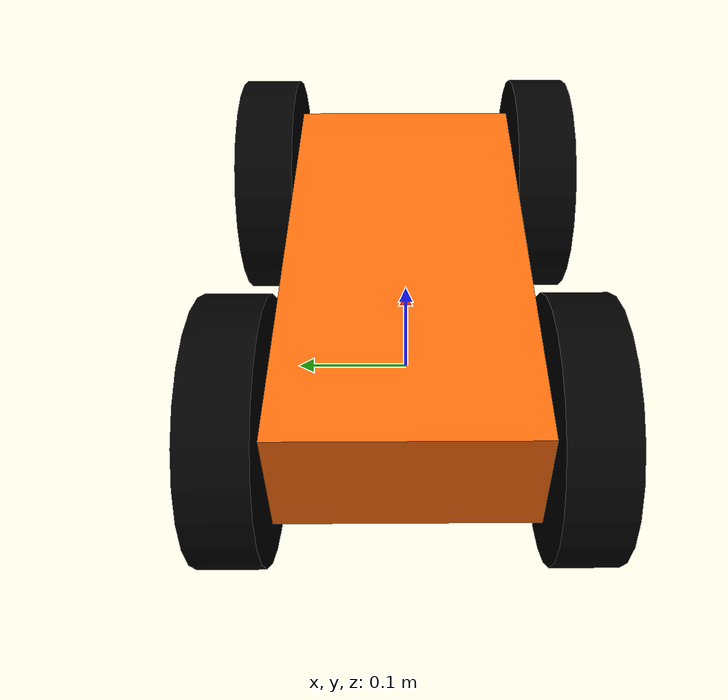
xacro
<?xml version="1.0"?>
<robot name="mybot" xmlns:xacro="http://www.ros.org/wiki/xacro">
  <xacro:property name="PI" value="3.1415926535897931"/>

  <xacro:property name="chassisHeight" value="0.1"/>
  <xacro:property name="chassisLength" value="0.4"/>
  <xacro:property name="chassisWidth" value="0.2"/>
  <xacro:property name="chassisMass" value="50"/>

  <xacro:property name="casterRadius" value="0.04"/>
  <xacro:property name="casterMass" value="3"/>

  <xacro:property name="wheelWidth" value="0.05"/>
  <xacro:property name="wheelRadius" value="0.1"/>
  <xacro:property name="wheelPos" value="0.05"/>
  <xacro:property name="wheelMass" value="5"/>

  <xacro:property name="cameraSize" value="0.05"/>
  <xacro:property name="cameraMass" value="0.1"/>

  <xacro:include filename="$(find mybot_description)/urdf/mybot.gazebo" />

  <xacro:include filename="$(find mybot_description)/urdf/materials.xacro" />

  <xacro:include filename="$(find mybot_description)/urdf/macros.xacro" />

  <link name="footprint" />

  <joint name="base_joint" type="fixed">
    <parent link="footprint"/>
    <child link="chassis"/>
  </joint>
  <link name='chassis'>
    <collision>
      <origin xyz="0 0 ${wheelRadius}" rpy="0 0 0"/>
      <geometry>
        <box size="${chassisLength} ${chassisWidth} ${chassisHeight}"/>
      </geometry>
    </collision>
    <visual>
      <origin xyz="0 0 ${wheelRadius}" rpy="0 0 0"/>
      <geometry>
        <box size="${chassisLength} ${chassisWidth} ${chassisHeight}"/>
      </geometry>
      <material name="orange"/>
    </visual>
    <inertial>
      <origin xyz="0 0 ${wheelRadius}" rpy="0 0 0"/>
      <mass value="${chassisMass}"/>
      <box_inertia m="${chassisMass}" x="${chassisLength}" y="${chassisWidth}" z="${chassisHeight}"/>
    </inertial>
  </link>

  <wheel lr="left" tY="1"/>
  <wheel lr="right" tY="-1"/>
  <wheel_no_effort lr="left" tY="1"/>
  <wheel_no_effort lr="right" tY="-1"/>
</robot>

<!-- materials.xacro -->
<robot name="mybot" xmlns:xacro="http://www.ros.org/wiki/xacro">
  <material name="black">
    <color rgba="0.0 0.0 0.0 1.0"/>
    </material>
  <material name="blue">
    <color rgba="0.0 0.0 0.8 1.0"/>
  </material>

  <material name="green">
    <color rgba="0.0 0.8 0.0 1.0"/>
  </material>

  <material name="grey">
    <color rgba="0.2 0.2 0.2 1.0"/>
  </material>

  <material name="orange">
    <color rgba="${255/255} ${108/255} ${10/255} 1.0"/>
  </material>

  <material name="brown">
    <color rgba="${222/255} ${207/255} ${195/255} 1.0"/>
  </material>

  <material name="red">
    <color rgba="0.8 0.0 0.0 1.0"/>
  </material>

  <material name="white">
    <color rgba="1.0 1.0 1.0 1.0"/>
  </material>
</robot>

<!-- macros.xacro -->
<robot name="mybot" xmlns:xacro="http://www.ros.org/wiki/xacro">
  <macro name="cylinder_inertia" params="m r h">
    <inertia  ixx="${m*(3*r*r+h*h)/12}" ixy = "0" ixz = "0"
      iyy="${m*(3*r*r+h*h)/12}" iyz = "0"
      izz="${m*r*r/2}"/>
  </macro>

  <macro name="box_inertia" params="m x y z">
    <inertia  ixx="${m*(y*y+z*z)/12}" ixy = "0" ixz = "0"
      iyy="${m*(x*x+z*z)/12}" iyz = "0"
      izz="${m*(x*x+z*z)/12}"/>
  </macro>

  <macro name="sphere_inertia" params="m r">
    <inertia  ixx="${2*m*r*r/5}" ixy = "0" ixz = "0"
      iyy="${2*m*r*r/5}" iyz = "0"
      izz="${2*m*r*r/5}"/>
  </macro>

  <macro name="wheel" params="lr tY">

    <link name="${lr}_wheel">
      <collision>
        <origin xyz="0 0 0" rpy="0 ${PI/2} ${PI/2}" />
        <geometry>
          <cylinder length="${wheelWidth}" radius="${wheelRadius}"/>
        </geometry>
      </collision>

      <visual>
        <origin xyz="0 0 0" rpy="0 ${PI/2} ${PI/2}" />
        <geometry>
          <cylinder length="${wheelWidth}" radius="${wheelRadius}"/>
        </geometry>
        <material name="black"/>
      </visual>

      <inertial>
        <origin xyz="0 0 0" rpy="0 ${PI/2} ${PI/2}" />
        <mass value="${wheelMass}"/>
        <cylinder_inertia m="${wheelMass}" r="${wheelRadius}" h="${wheelWidth}"/>
      </inertial>
    </link>

    <gazebo reference="${lr}_wheel">
      <mu1 value="1"/>
      <mu2 value="1"/>
      <kp  value="10000000.0" />
      <kd  value="1.0" />
      <fdir1 value="0 1 0"/>
      <material>Gazebo/Black</material>
    </gazebo>

    <joint name="${lr}_wheel_hinge" type="continuous">
      <parent link="chassis"/>
      <child link="${lr}_wheel"/>
      <origin xyz="${+wheelPos-chassisLength/2} ${tY*wheelWidth/2+tY*chassisWidth/2} ${wheelRadius}" rpy="0 0 0" />
      <axis xyz="0 1 0" rpy="0 0 0" />
      <limit effort="100" velocity="100"/>
      <dynamics damping="0.7" friction="100.0" />
    </joint>

    <transmission name="${lr}_trans">
      <type>transmission_interface/SimpleTransmission</type>
      <joint name="${lr}_wheel_hinge">
        <hardwareInterface>EffortJointInterface</hardwareInterface>
      </joint>
      <actuator name="${lr}Motor">
        <hardwareInterface>EffortJointInterface</hardwareInterface>
        <mechanicalReduction>10</mechanicalReduction>
      </actuator>
    </transmission>

  </macro>

  <macro name="wheel_no_effort" params="lr tY">

    <link name="${lr}_wheel_no_effort">
      <collision>
        <origin xyz="0 0 0" rpy="0 ${PI/2} ${PI/2}" />
        <geometry>
          <cylinder length="${wheelWidth}" radius="${wheelRadius}"/>
        </geometry>
      </collision>

      <visual>
        <origin xyz="0 0 0" rpy="0 ${PI/2} ${PI/2}" />
        <geometry>
          <cylinder length="${wheelWidth}" radius="${wheelRadius}"/>
        </geometry>
        <material name="black"/>
      </visual>

      <inertial>
        <origin xyz="0 0 0" rpy="0 ${PI/2} ${PI/2}" />
        <mass value="${wheelMass}"/>
        <cylinder_inertia m="${wheelMass}" r="${wheelRadius}" h="${wheelWidth}"/>
      </inertial>
    </link>

    <gazebo reference="${lr}_wheel_no_effort">
      <mu1 value="0"/>
      <mu2 value="0"/>
      <kp  value="10000000.0" />
      <kd  value="1.0" />
      <fdir1 value="0 1 0"/>
      <material>Gazebo/Black</material>
    </gazebo>

    <joint name="${lr}_wheel_hinge_no_effort" type="continuous">
      <parent link="chassis"/>
      <child link="${lr}_wheel_no_effort"/>
      <origin xyz="${-wheelPos+chassisLength/2} ${tY*wheelWidth/2+tY*chassisWidth/2} ${wheelRadius}" rpy="0 0 0" />
      <axis xyz="0 1 0" rpy="0 0 0" />
      <limit effort="100" velocity="100"/>
      <dynamics damping="0.7" friction="100.0" />
    </joint>

    <transmission name="${lr}_trans_no_effort">
      <type>transmission_interface/SimpleTransmission</type>
      <joint name="${lr}_wheel_hinge_no_effort">
        <hardwareInterface>EffortJointInterface</hardwareInterface>
      </joint>
      <actuator name="${lr}Motor_no_effort">
        <hardwareInterface>EffortJointInterface</hardwareInterface>
        <mechanicalReduction>10</mechanicalReduction>
      </actuator>
    </transmission>

  </macro>
</robot>
